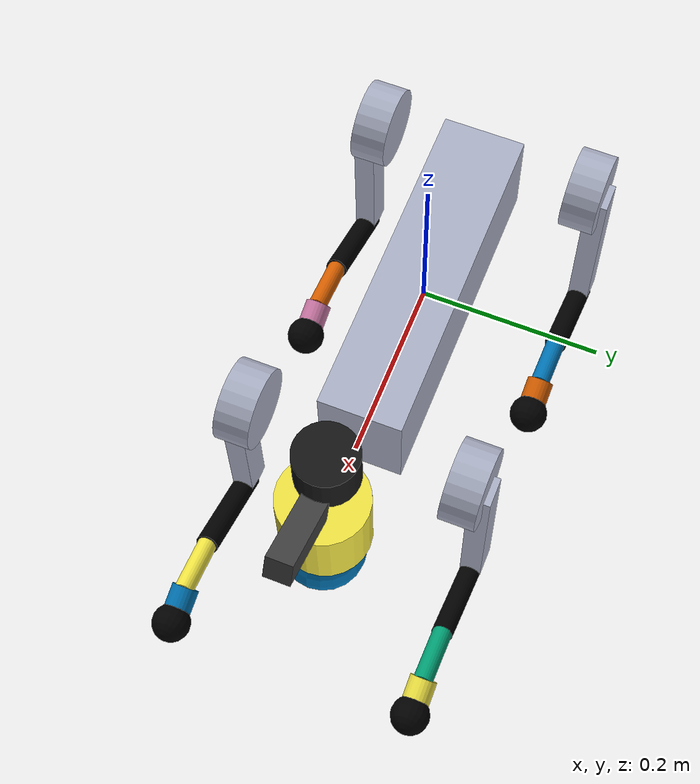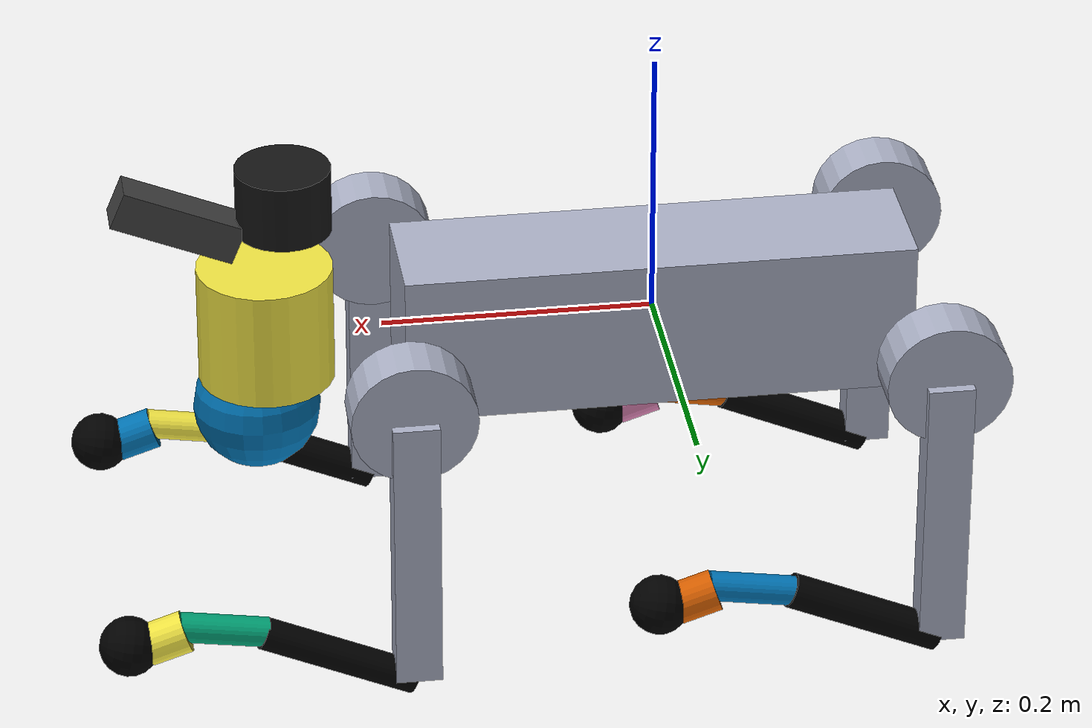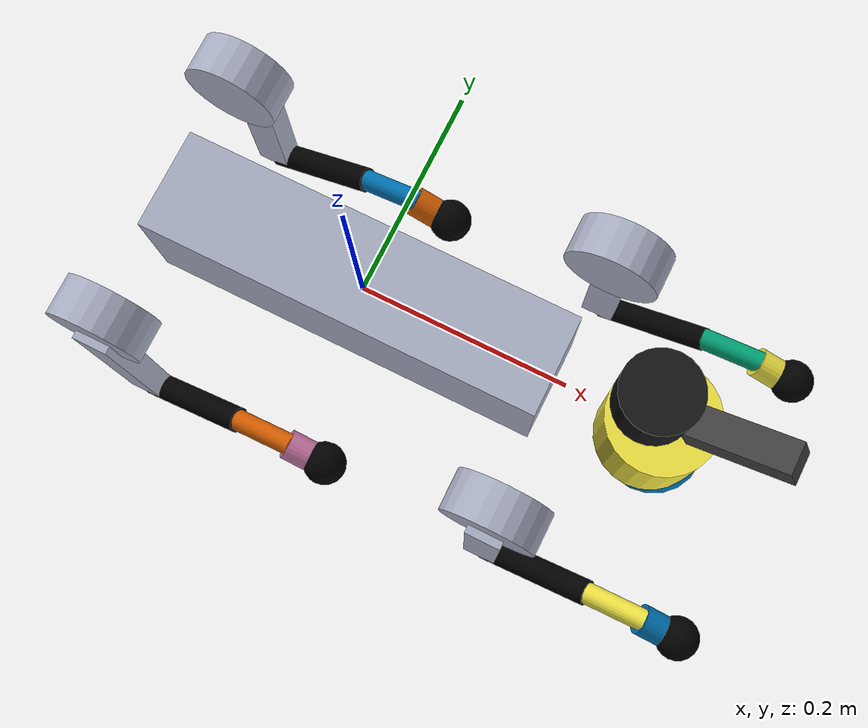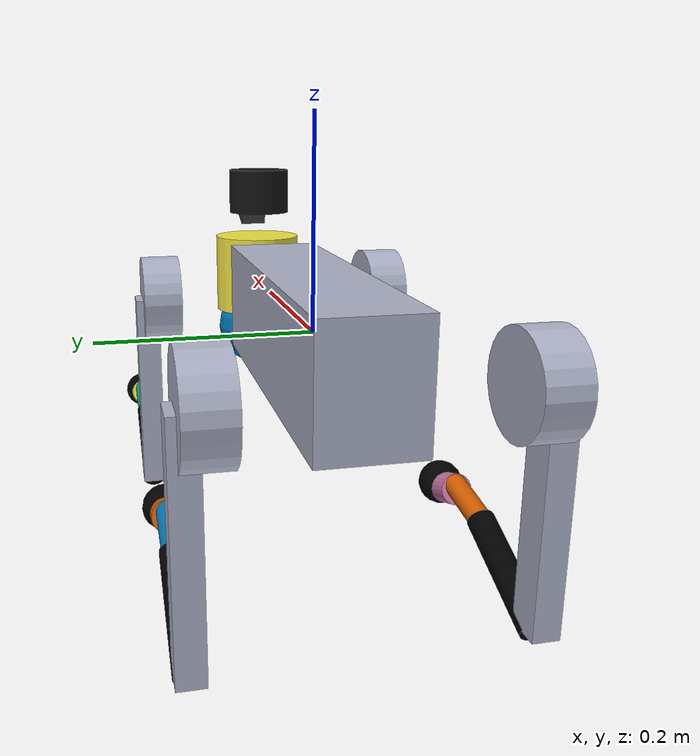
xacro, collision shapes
<?xml version="1.0"?>
<robot name="go2_description" xmlns:xacro="http://www.ros.org/wiki/xacro">
  <xacro:include filename="$(find go2_description)/urdf/go2_nav_frames.xacro"/>
  <xacro:include filename="$(find go2_description)/urdf/go2_official_body.xacro"/>
  <xacro:include filename="$(find go2_description)/urdf/go2_lidar.xacro"/>
  <xacro:include filename="$(find go2_description)/urdf/go2_d435i_mount.xacro"/>
  <xacro:include filename="$(find go2_description)/urdf/go2_realsense_d435i.xacro"/>
  <xacro:include filename="$(find go2_description)/urdf/go2_gazebo_d435i_sensor.xacro"/>
  <xacro:include filename="$(find go2_description)/urdf/go2_gazebo_planar_move.xacro"/>

  <xacro:arg name="enable_lidar" default="true"/>
  <xacro:arg name="enable_gazebo_lidar_plugin" default="false"/>
  <xacro:arg name="gazebo_scan_topic" default="/unilidar/laserscan"/>
  <xacro:arg name="gazebo_lidar_cloud_topic" default="/unilidar/cloud"/>
  <xacro:arg name="gazebo_lidar_update_rate" default="5.55"/>
  <xacro:arg name="gazebo_lidar_cloud_horizontal_samples" default="592"/>
  <xacro:arg name="gazebo_lidar_cloud_vertical_samples" default="39"/>
  <xacro:arg name="gazebo_lidar_scan_samples" default="592"/>
  <xacro:arg name="gazebo_lidar_sensor_type" default="gpu_ray"/>
  <xacro:arg name="gazebo_lidar_min_angle" default="-3.14159265359"/>
  <xacro:arg name="gazebo_lidar_max_angle" default="3.14159265359"/>
  <xacro:arg name="gazebo_lidar_vertical_min_angle" default="-0.83775804096"/>
  <xacro:arg name="gazebo_lidar_vertical_max_angle" default="0.83775804096"/>
  <xacro:arg name="gazebo_lidar_min_range" default="0.05"/>
  <xacro:arg name="gazebo_lidar_max_range" default="30.0"/>
  <xacro:arg name="enable_depth_camera" default="true"/>
  <xacro:arg name="enable_gazebo_depth_plugin" default="false"/>
  <xacro:arg name="enable_gazebo_planar_move" default="false"/>
  <xacro:arg name="freeze_gazebo_model" default="false"/>
  <xacro:arg name="gazebo_cmd_vel_topic" default="/cmd_vel"/>
  <xacro:arg name="d435i_pitch_deg" default="-22.5"/>
  <xacro:arg name="d435i_collision_padding_m" default="0.002"/>

  <xacro:go2_nav_frames/>
  <xacro:go2_official_body freeze_joints="$(arg freeze_gazebo_model)"/>

  <xacro:if value="$(arg enable_lidar)">
    <xacro:go2_lidar
      parent="base"
      enable_gazebo_plugin="$(arg enable_gazebo_lidar_plugin)"
      cloud_topic="$(arg gazebo_lidar_cloud_topic)"
      laserscan_topic="$(arg gazebo_scan_topic)"
      update_rate="$(arg gazebo_lidar_update_rate)"
      cloud_horizontal_samples="$(arg gazebo_lidar_cloud_horizontal_samples)"
      cloud_vertical_samples="$(arg gazebo_lidar_cloud_vertical_samples)"
      scan_samples="$(arg gazebo_lidar_scan_samples)"
      lidar_sensor_type="$(arg gazebo_lidar_sensor_type)"
      min_angle="$(arg gazebo_lidar_min_angle)"
      max_angle="$(arg gazebo_lidar_max_angle)"
      vertical_min_angle="$(arg gazebo_lidar_vertical_min_angle)"
      vertical_max_angle="$(arg gazebo_lidar_vertical_max_angle)"
      min_range="$(arg gazebo_lidar_min_range)"
      max_range="$(arg gazebo_lidar_max_range)"/>
  </xacro:if>

  <xacro:if value="$(arg enable_gazebo_planar_move)">
    <xacro:go2_gazebo_planar_move
      cmd_vel_topic="$(arg gazebo_cmd_vel_topic)"/>
  </xacro:if>

  <xacro:if value="$(arg enable_depth_camera)">
    <xacro:go2_d435i_mount
      parent="base"
      d435i_pitch_deg="$(arg d435i_pitch_deg)"
      d435i_collision_padding_m="$(arg d435i_collision_padding_m)"/>
    <xacro:go2_realsense_d435i
      parent="d435i_link"
      sensor_name="camera"/>
    <xacro:if value="$(arg enable_gazebo_depth_plugin)">
      <xacro:go2_gazebo_d435i_sensor sensor_name="camera"/>
    </xacro:if>
  </xacro:if>
</robot>

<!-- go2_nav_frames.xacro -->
<robot xmlns:xacro="http://www.ros.org/wiki/xacro">
  <xacro:macro name="go2_nav_frames" params="">
    <link name="base_footprint"/>
    <link name="base_link"/>

    <joint name="base_link_to_base_footprint_joint" type="fixed">
      <parent link="base_link"/>
      <child link="base_footprint"/>
      <origin xyz="0 0 0" rpy="0 0 0"/>
    </joint>

    <joint name="base_link_to_base_joint" type="fixed">
      <parent link="base_link"/>
      <child link="base"/>
      <origin xyz="0 0 0" rpy="0 0 0"/>
    </joint>
  </xacro:macro>
</robot>

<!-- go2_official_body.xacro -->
<robot xmlns:xacro="http://www.ros.org/wiki/xacro">
  <xacro:macro name="go2_official_body" params="freeze_joints:=false"><link name="base">
    <inertial>
      <origin xyz="0.021112 0 -0.005366" rpy="0 0 0" />
      <mass value="6.921" />
      <inertia ixx="0.02448" ixy="0.00012166" ixz="0.0014849" iyy="0.098077" iyz="-3.12E-05" izz="0.107" />
    </inertial>
    <visual>
      <origin xyz="0 0 0" rpy="0 0 0" />
      <geometry>
        <mesh filename="file://$(find go2_description)/dae/base.dae" />
      </geometry>
      <material name="深色橡胶_001-effect"><color rgba="0.6717055 0.6924257 0.7742702 1" /></material><material name="白色logo_001-effect"><color rgba="1 1 1 1" /></material><material name="黑色贴纸_007-effect"><color rgba="0.009018 0.009018 0.009018 1" /></material><material name="黑色金属_007-effect"><color rgba="0.01341 0.01341 0.01341 1" /></material><material name="黑色塑料_003-effect"><color rgba="0.023455 0.023455 0.023455 1" /></material></visual>
    <collision>
      <origin rpy="0 0 0" xyz="0 0 0" />
      <geometry>
        <box size="0.3762 0.0935 0.114" />
      </geometry>
    </collision>
  </link>
  <link name="Head_upper">
    <inertial>
      <origin xyz="0 0 0" rpy="0 0 0" />
      <mass value="0.001" />
      <inertia ixx="9.6e-06" ixy="0" ixz="0" iyy="9.6e-06" iyz="0" izz="9.6e-06" />
    </inertial>
    <collision>
      <origin xyz="0 0 0" rpy="0 0 0" />
      <geometry>
        <cylinder radius="0.05" length="0.09" />
      </geometry>
    </collision>
  </link>
  <joint name="Head_upper_joint" type="fixed" dont_collapse="true">
    <origin xyz="0.285 0 0.01" rpy="0 0 0" />
    <parent link="base" />
    <child link="Head_upper" />
    <axis xyz="0 0 0" />
  </joint>
  <link name="Head_lower">
    <inertial>
      <origin xyz="0 0 0" rpy="0 0 0" />
      <mass value="0.001" />
      <inertia ixx="9.6e-06" ixy="0" ixz="0" iyy="9.6e-06" iyz="0" izz="9.6e-06" />
    </inertial>
    <collision>
      <origin xyz="0 0 0" rpy="0 0 0" />
      <geometry>
        <sphere radius="0.047" />
      </geometry>
    </collision>
  </link>
  <joint name="Head_lower_joint" type="fixed" dont_collapse="true">
    <origin xyz="0.008 0 -0.07" rpy="0 0 0" />
    <parent link="Head_upper" />
    <child link="Head_lower" />
    <axis xyz="0 0 0" />
  </joint>
  <link name="FL_hip">
    <inertial>
      <origin xyz="-0.0054 0.00194 -0.000105" rpy="0 0 0" />
      <mass value="0.678" />
      <inertia ixx="0.00048" ixy="-3.01E-06" ixz="1.11E-06" iyy="0.000884" iyz="-1.42E-06" izz="0.000596" />
    </inertial>
    <visual>
      <origin xyz="0 0 0" rpy="0 0 0" />
      <geometry>
        <mesh filename="file://$(find go2_description)/dae/hip.dae" />
      </geometry>
      <material name="深色橡胶_001-effect"><color rgba="0.6717055 0.6924257 0.7742702 1" /></material><material name="Material-effect"><color rgba="0.9 0.95 0.95 1" /></material></visual>
    <collision>
      <origin rpy="1.5707963267948966 0 0" xyz="0 0.08 0" />
      <geometry>
        <cylinder length="0.04" radius="0.046" />
      </geometry>
    </collision>
  </link>
  <joint name="FL_hip_joint" type="${'fixed' if freeze_joints else 'revolute'}">
    <origin xyz="0.1934 0.0465 0" rpy="0 0 0" />
    <parent link="base" />
    <child link="FL_hip" />
    <axis xyz="1 0 0" />
    <limit lower="-1.0472" upper="1.0472" effort="23.7" velocity="30.1" />
  </joint>
  <link name="FL_hip_rotor">
    <inertial>
      <origin rpy="0 0 0" xyz="0.0 0.0 0.0" />
      <mass value="0.089" />
      <inertia ixx="0.000111842" ixy="0.0" ixz="0.0" iyy="0.000059647" iyz="0.0" izz="0.000059647" />
    </inertial>
  </link>
  <joint name="FL_hip_rotor_joint" type="fixed">
    <origin rpy="0 0 0" xyz="0.11215 0.04675 0" />
    <parent link="base" />
    <child link="FL_hip_rotor" />
  </joint>
  <link name="FL_thigh">
    <inertial>
      <origin xyz="-0.00374 -0.0223 -0.0327" rpy="0 0 0" />
      <mass value="1.152" />
      <inertia ixx="0.00584" ixy="8.72E-05" ixz="-0.000289" iyy="0.0058" iyz="0.000808" izz="0.00103" />
    </inertial>
    <visual>
      <origin xyz="0 0 0" rpy="0 0 0" />
      <geometry>
        <mesh filename="file://$(find go2_description)/dae/thigh.dae" />
      </geometry>
      <material name="深色橡胶_003-effect"><color rgba="0.6717055 0.6924257 0.7742702 1" /></material><material name="Material_009-effect"><color rgba="0.9 0.95 0.95 1" /></material></visual>
    <collision>
      <origin rpy="0 1.5707963267948966 0" xyz="0 0 -0.1065" />
      <geometry>
        <box size="0.213 0.0245 0.034" />
      </geometry>
    </collision>
  </link>
  <joint name="FL_thigh_joint" type="${'fixed' if freeze_joints else 'revolute'}">
    <origin xyz="0 0.0955 0" rpy="${'0 0.8 0' if freeze_joints else '0 0 0'}" />
    <parent link="FL_hip" />
    <child link="FL_thigh" />
    <axis xyz="0 1 0" />
    <limit lower="-1.5708" upper="3.4907" effort="23.7" velocity="30.1" />
  </joint>
  <link name="FL_thigh_rotor">
    <inertial>
      <origin rpy="0 0 0" xyz="0.0 0.0 0.0" />
      <mass value="0.089" />
      <inertia ixx="0.000059647" ixy="0.0" ixz="0.0" iyy="0.000111842" iyz="0.0" izz="0.000059647" />
    </inertial>
  </link>
  <joint name="FL_thigh_rotor_joint" type="fixed">
    <origin rpy="0 0 0" xyz="0 -0.00015 0" />
    <parent link="FL_hip" />
    <child link="FL_thigh_rotor" />
  </joint>
  <link name="FL_calf">
    <inertial>
      <origin xyz="0.00548 -0.000975 -0.115" rpy="0 0 0" />
      <mass value="0.154" />
      <inertia ixx="0.00108" ixy="3.4E-07" ixz="1.72E-05" iyy="0.0011" iyz="8.28E-06" izz="3.29E-05" />
    </inertial>
    <visual>
      <origin xyz="0 0 0" rpy="0 0 0" />
      <geometry>
        <mesh filename="file://$(find go2_description)/dae/calf.dae" />
      </geometry>
      <material name="黑色足端_005-effect"><color rgba="0 0 0 1" /></material><material name="深色橡胶_005-effect"><color rgba="0.6717055 0.6924257 0.7742702 1" /></material></visual>
    <collision>
      <origin rpy="0 -0.21 0" xyz="0.008 0 -0.06" />
      <geometry>
        <cylinder length="0.12" radius="0.012" />
      </geometry>
    </collision>
  </link>
  <joint name="FL_calf_joint" type="${'fixed' if freeze_joints else 'revolute'}">
    <origin xyz="0 0 -0.213" rpy="${'0 -1.6 0' if freeze_joints else '0 0 0'}" />
    <parent link="FL_thigh" />
    <child link="FL_calf" />
    <axis xyz="0 1 0" />
    <limit lower="-2.7227" upper="-0.83776" effort="45.43" velocity="15.70" />
  </joint>
  <link name="FL_calflower">
    <collision>
      <origin rpy="0 0 0" xyz="0 0 0" />
      <geometry>
        <cylinder length="0.065" radius="0.011" />
      </geometry>
    </collision>
  </link>
  <joint name="FL_calflower_joint" type="fixed">
    <origin xyz="0.020 0 -0.148" rpy="0 0.05 0" />
    <parent link="FL_calf" />
    <child link="FL_calflower" />
    <axis xyz="0 0 0" />
  </joint>
  <link name="FL_calflower1">
    <collision>
      <origin rpy="0 0 0" xyz="0 0 0" />
      <geometry>
        <cylinder length="0.03" radius="0.0155" />
      </geometry>
    </collision>
  </link>
  <joint name="FL_calflower1_joint" type="fixed">
    <origin xyz="-0.01 0 -0.04" rpy="0 0.48 0" />
    <parent link="FL_calflower" />
    <child link="FL_calflower1" />
    <axis xyz="0 0 0" />
  </joint>
  <link name="FL_calf_rotor">
    <inertial>
      <origin rpy="0 0 0" xyz="0.0 0.0 0.0" />
      <mass value="0.089" />
      <inertia ixx="0.000059647" ixy="0.0" ixz="0.0" iyy="0.000111842" iyz="0.0" izz="0.000059647" />
    </inertial>
  </link>
  <joint name="FL_calf_rotor_joint" type="fixed">
    <origin rpy="0 0 0" xyz="0 -0.03235 0" />
    <parent link="FL_thigh" />
    <child link="FL_calf_rotor" />
  </joint>
  <link name="FL_foot">
    <inertial>
      <origin xyz="0 0 0" rpy="0 0 0" />
      <mass value="0.04" />
      <inertia ixx="9.6e-06" ixy="0" ixz="0" iyy="9.6e-06" iyz="0" izz="9.6e-06" />
    </inertial>
    <visual>
      <origin xyz="0 0 0" rpy="0 0 0" />
      <geometry>
        <mesh filename="file://$(find go2_description)/dae/foot.dae" />
      </geometry>
      <material name="黑色足端_007-effect"><color rgba="0 0 0 1" /></material></visual>
    <collision>
      <origin rpy="0 0 0" xyz="-0.002 0 0" />
      <geometry>
        <sphere radius="0.022" />
      </geometry>
    </collision>
  </link>
  <joint name="FL_foot_joint" type="fixed" dont_collapse="true">
    <origin xyz="0 0 -0.213" rpy="0 0 0" />
    <parent link="FL_calf" />
    <child link="FL_foot" />
    <axis xyz="0 0 0" />
  </joint>
  <link name="FR_hip">
    <inertial>
      <origin xyz="-0.0054 -0.00194 -0.000105" rpy="0 0 0" />
      <mass value="0.678" />
      <inertia ixx="0.00048" ixy="3.01E-06" ixz="1.11E-06" iyy="0.000884" iyz="1.42E-06" izz="0.000596" />
    </inertial>
    <visual>
      <origin xyz="0 0 0" rpy="3.1415 0 0" />
      <geometry>
        <mesh filename="file://$(find go2_description)/dae/hip.dae" />
      </geometry>
      <material name="深色橡胶_001-effect"><color rgba="0.6717055 0.6924257 0.7742702 1" /></material><material name="Material-effect"><color rgba="0.9 0.95 0.95 1" /></material></visual>
    <collision>
      <origin rpy="1.5707963267948966 0 0" xyz="0 -0.08 0" />
      <geometry>
        <cylinder length="0.04" radius="0.046" />
      </geometry>
    </collision>
  </link>
  <joint name="FR_hip_joint" type="${'fixed' if freeze_joints else 'revolute'}">
    <origin xyz="0.1934 -0.0465 0" rpy="0 0 0" />
    <parent link="base" />
    <child link="FR_hip" />
    <axis xyz="1 0 0" />
    <limit lower="-1.0472" upper="1.0472" effort="23.7" velocity="30.1" />
  </joint>
  <link name="FR_hip_rotor">
    <inertial>
      <origin rpy="0 0 0" xyz="0.0 0.0 0.0" />
      <mass value="0.089" />
      <inertia ixx="0.000111842" ixy="0.0" ixz="0.0" iyy="0.000059647" iyz="0.0" izz="0.000059647" />
    </inertial>
  </link>
  <joint name="FR_hip_rotor_joint" type="fixed">
    <origin rpy="0 0 0" xyz="0.11215 -0.04675 0" />
    <parent link="base" />
    <child link="FR_hip_rotor" />
  </joint>
  <link name="FR_thigh">
    <inertial>
      <origin xyz="-0.00374 0.0223 -0.0327" rpy="0 0 0" />
      <mass value="1.152" />
      <inertia ixx="0.00584" ixy="-8.72E-05" ixz="-0.000289" iyy="0.0058" iyz="-0.000808" izz="0.00103" />
    </inertial>
    <visual>
      <origin xyz="0 0 0" rpy="0 0 0" />
      <geometry>
        <mesh filename="file://$(find go2_description)/dae/thigh_mirror.dae" />
      </geometry>
      <material name="深色橡胶_012-effect"><color rgba="0.6717055 0.6924257 0.7742702 1" /></material><material name="Material_011-effect"><color rgba="0.9 0.95 0.95 1" /></material></visual>
    <collision>
      <origin rpy="0 1.5707963267948966 0" xyz="0 0 -0.1065" />
      <geometry>
        <box size="0.213 0.0245 0.034" />
      </geometry>
    </collision>
  </link>
  <joint name="FR_thigh_joint" type="${'fixed' if freeze_joints else 'revolute'}">
    <origin xyz="0 -0.0955 0" rpy="${'0 0.8 0' if freeze_joints else '0 0 0'}" />
    <parent link="FR_hip" />
    <child link="FR_thigh" />
    <axis xyz="0 1 0" />
    <limit lower="-1.5708" upper="3.4907" effort="23.7" velocity="30.1" />
  </joint>
  <link name="FR_thigh_rotor">
    <inertial>
      <origin rpy="0 0 0" xyz="0.0 0.0 0.0" />
      <mass value="0.089" />
      <inertia ixx="0.000059647" ixy="0.0" ixz="0.0" iyy="0.000111842" iyz="0.0" izz="0.000059647" />
    </inertial>
  </link>
  <joint name="FR_thigh_rotor_joint" type="fixed">
    <origin rpy="0 0 0" xyz="0 0.00015 0" />
    <parent link="FR_hip" />
    <child link="FR_thigh_rotor" />
  </joint>
  <link name="FR_calf">
    <inertial>
      <origin xyz="0.00548 0.000975 -0.115" rpy="0 0 0" />
      <mass value="0.154" />
      <inertia ixx="0.00108" ixy="-3.4E-07" ixz="1.72E-05" iyy="0.0011" iyz="-8.28E-06" izz="3.29E-05" />
    </inertial>
    <visual>
      <origin xyz="0 0 0" rpy="0 0 0" />
      <geometry>
        <mesh filename="file://$(find go2_description)/dae/calf_mirror.dae" />
      </geometry>
      <material name="黑色足端_006-effect"><color rgba="0 0 0 1" /></material><material name="深色橡胶_007-effect"><color rgba="0.6717055 0.6924257 0.7742702 1" /></material></visual>
    <collision>
      <origin rpy="0 -0.2 0" xyz="0.01 0 -0.06" />
      <geometry>
        <cylinder length="0.12" radius="0.013" />
      </geometry>
    </collision>
  </link>
  <joint name="FR_calf_joint" type="${'fixed' if freeze_joints else 'revolute'}">
    <origin xyz="0 0 -0.213" rpy="${'0 -1.6 0' if freeze_joints else '0 0 0'}" />
    <parent link="FR_thigh" />
    <child link="FR_calf" />
    <axis xyz="0 1 0" />
    <limit lower="-2.7227" upper="-0.83776" effort="45.43" velocity="15.70" />
  </joint>
  <link name="FR_calflower">
    <collision>
      <origin rpy="0 0 0" xyz="0 0 0" />
      <geometry>
        <cylinder length="0.065" radius="0.011" />
      </geometry>
    </collision>
  </link>
  <joint name="FR_calflower_joint" type="fixed">
    <origin xyz="0.020 0 -0.148" rpy="0 0.05 0" />
    <parent link="FR_calf" />
    <child link="FR_calflower" />
    <axis xyz="0 0 0" />
  </joint>
  <link name="FR_calflower1">
    <collision>
      <origin rpy="0 0 0" xyz="0 0 0" />
      <geometry>
        <cylinder length="0.03" radius="0.0155" />
      </geometry>
    </collision>
  </link>
  <joint name="FR_calflower1_joint" type="fixed">
    <origin xyz="-0.01 0 -0.04" rpy="0 0.48 0" />
    <parent link="FR_calflower" />
    <child link="FR_calflower1" />
    <axis xyz="0 0 0" />
  </joint>
  <link name="FR_calf_rotor">
    <inertial>
      <origin rpy="0 0 0" xyz="0.0 0.0 0.0" />
      <mass value="0.089" />
      <inertia ixx="0.000059647" ixy="0.0" ixz="0.0" iyy="0.000111842" iyz="0.0" izz="0.000059647" />
    </inertial>
  </link>
  <joint name="FR_calf_rotor_joint" type="fixed">
    <origin rpy="0 0 0" xyz="0 0.03235 0" />
    <parent link="FR_thigh" />
    <child link="FR_calf_rotor" />
  </joint>
  <link name="FR_foot">
    <inertial>
      <origin xyz="0 0 0" rpy="0 0 0" />
      <mass value="0.04" />
      <inertia ixx="9.6e-06" ixy="0" ixz="0" iyy="9.6e-06" iyz="0" izz="9.6e-06" />
    </inertial>
    <visual>
      <origin xyz="0 0 0" rpy="0 0 0" />
      <geometry>
        <mesh filename="file://$(find go2_description)/dae/foot.dae" />
      </geometry>
      <material name="黑色足端_007-effect"><color rgba="0 0 0 1" /></material></visual>
    <collision>
      <origin rpy="0 0 0" xyz="-0.002 0 0" />
      <geometry>
        <sphere radius="0.022" />
      </geometry>
    </collision>
  </link>
  <joint name="FR_foot_joint" type="fixed" dont_collapse="true">
    <origin xyz="0 0 -0.213" rpy="0 0 0" />
    <parent link="FR_calf" />
    <child link="FR_foot" />
    <axis xyz="0 0 0" />
  </joint>
  <link name="RL_hip">
    <inertial>
      <origin xyz="0.0054 0.00194 -0.000105" rpy="0 0 0" />
      <mass value="0.678" />
      <inertia ixx="0.00048" ixy="3.01E-06" ixz="-1.11E-06" iyy="0.000884" iyz="-1.42E-06" izz="0.000596" />
    </inertial>
    <visual>
      <origin xyz="0 0 0" rpy="0 3.1415 0" />
      <geometry>
        <mesh filename="file://$(find go2_description)/dae/hip.dae" />
      </geometry>
      <material name="深色橡胶_001-effect"><color rgba="0.6717055 0.6924257 0.7742702 1" /></material><material name="Material-effect"><color rgba="0.9 0.95 0.95 1" /></material></visual>
    <collision>
      <origin rpy="1.5707963267948966 0 0" xyz="0 0.08 0" />
      <geometry>
        <cylinder length="0.04" radius="0.046" />
      </geometry>
    </collision>
  </link>
  <joint name="RL_hip_joint" type="${'fixed' if freeze_joints else 'revolute'}">
    <origin xyz="-0.1934 0.0465 0" rpy="0 0 0" />
    <parent link="base" />
    <child link="RL_hip" />
    <axis xyz="1 0 0" />
    <limit lower="-1.0472" upper="1.0472" effort="23.7" velocity="30.1" />
  </joint>
  <link name="RL_hip_rotor">
    <inertial>
      <origin rpy="0 0 0" xyz="0.0 0.0 0.0" />
      <mass value="0.089" />
      <inertia ixx="0.000111842" ixy="0.0" ixz="0.0" iyy="0.000059647" iyz="0.0" izz="0.000059647" />
    </inertial>
  </link>
  <joint name="RL_hip_rotor_joint" type="fixed">
    <origin rpy="0 0 0" xyz="-0.11215 0.04675 0" />
    <parent link="base" />
    <child link="RL_hip_rotor" />
  </joint>
  <link name="RL_thigh">
    <inertial>
      <origin xyz="-0.00374 -0.0223 -0.0327" rpy="0 0 0" />
      <mass value="1.152" />
      <inertia ixx="0.00584" ixy="8.72E-05" ixz="-0.000289" iyy="0.0058" iyz="0.000808" izz="0.00103" />
    </inertial>
    <visual>
      <origin xyz="0 0 0" rpy="0 0 0" />
      <geometry>
        <mesh filename="file://$(find go2_description)/dae/thigh.dae" />
      </geometry>
      <material name="深色橡胶_003-effect"><color rgba="0.6717055 0.6924257 0.7742702 1" /></material><material name="Material_009-effect"><color rgba="0.9 0.95 0.95 1" /></material></visual>
    <collision>
      <origin rpy="0 1.5707963267948966 0" xyz="0 0 -0.1065" />
      <geometry>
        <box size="0.213 0.0245 0.034" />
      </geometry>
    </collision>
  </link>
  <joint name="RL_thigh_joint" type="${'fixed' if freeze_joints else 'revolute'}">
    <origin xyz="0 0.0955 0" rpy="${'0 0.8 0' if freeze_joints else '0 0 0'}" />
    <parent link="RL_hip" />
    <child link="RL_thigh" />
    <axis xyz="0 1 0" />
    <limit lower="-0.5236" upper="4.5379" effort="23.7" velocity="30.1" />
  </joint>
  <link name="RL_thigh_rotor">
    <inertial>
      <origin rpy="0 0 0" xyz="0.0 0.0 0.0" />
      <mass value="0.089" />
      <inertia ixx="0.000059647" ixy="0.0" ixz="0.0" iyy="0.000111842" iyz="0.0" izz="0.000059647" />
    </inertial>
  </link>
  <joint name="RL_thigh_rotor_joint" type="fixed">
    <origin rpy="0 0 0" xyz="0 -0.00015 0" />
    <parent link="RL_hip" />
    <child link="RL_thigh_rotor" />
  </joint>
  <link name="RL_calf">
    <inertial>
      <origin xyz="0.00548 -0.000975 -0.115" rpy="0 0 0" />
      <mass value="0.154" />
      <inertia ixx="0.00108" ixy="3.4E-07" ixz="1.72E-05" iyy="0.0011" iyz="8.28E-06" izz="3.29E-05" />
    </inertial>
    <visual>
      <origin xyz="0 0 0" rpy="0 0 0" />
      <geometry>
        <mesh filename="file://$(find go2_description)/dae/calf.dae" />
      </geometry>
      <material name="黑色足端_005-effect"><color rgba="0 0 0 1" /></material><material name="深色橡胶_005-effect"><color rgba="0.6717055 0.6924257 0.7742702 1" /></material></visual>
    <collision>
      <origin rpy="0 -0.2 0" xyz="0.01 0 -0.06" />
      <geometry>
        <cylinder length="0.12" radius="0.013" />
      </geometry>
    </collision>
  </link>
  <joint name="RL_calf_joint" type="${'fixed' if freeze_joints else 'revolute'}">
    <origin xyz="0 0 -0.213" rpy="${'0 -1.6 0' if freeze_joints else '0 0 0'}" />
    <parent link="RL_thigh" />
    <child link="RL_calf" />
    <axis xyz="0 1 0" />
    <limit lower="-2.7227" upper="-0.83776" effort="45.43" velocity="15.70" />
  </joint>
  <link name="RL_calflower">
    <collision>
      <origin rpy="0 0 0" xyz="0 0 0" />
      <geometry>
        <cylinder length="0.065" radius="0.011" />
      </geometry>
    </collision>
  </link>
  <joint name="RL_calflower_joint" type="fixed">
    <origin xyz="0.020 0 -0.148" rpy="0 0.05 0" />
    <parent link="RL_calf" />
    <child link="RL_calflower" />
    <axis xyz="0 0 0" />
  </joint>
  <link name="RL_calflower1">
    <collision>
      <origin rpy="0 0 0" xyz="0 0 0" />
      <geometry>
        <cylinder length="0.03" radius="0.0155" />
      </geometry>
    </collision>
  </link>
  <joint name="RL_calflower1_joint" type="fixed">
    <origin xyz="-0.01 0 -0.04" rpy="0 0.48 0" />
    <parent link="RL_calflower" />
    <child link="RL_calflower1" />
    <axis xyz="0 0 0" />
  </joint>
  <link name="RL_calf_rotor">
    <inertial>
      <origin rpy="0 0 0" xyz="0.0 0.0 0.0" />
      <mass value="0.089" />
      <inertia ixx="0.000059647" ixy="0.0" ixz="0.0" iyy="0.000111842" iyz="0.0" izz="0.000059647" />
    </inertial>
  </link>
  <joint name="RL_calf_rotor_joint" type="fixed">
    <origin rpy="0 0 0" xyz="0 -0.03235 0" />
    <parent link="RL_thigh" />
    <child link="RL_calf_rotor" />
  </joint>
  <link name="RL_foot">
    <inertial>
      <origin xyz="0 0 0" rpy="0 0 0" />
      <mass value="0.04" />
      <inertia ixx="9.6e-06" ixy="0" ixz="0" iyy="9.6e-06" iyz="0" izz="9.6e-06" />
    </inertial>
    <visual>
      <origin xyz="0 0 0" rpy="0 0 0" />
      <geometry>
        <mesh filename="file://$(find go2_description)/dae/foot.dae" />
      </geometry>
      <material name="黑色足端_007-effect"><color rgba="0 0 0 1" /></material></visual>
    <collision>
      <origin rpy="0 0 0" xyz="-0.002 0 0" />
      <geometry>
        <sphere radius="0.022" />
      </geometry>
    </collision>
  </link>
  <joint name="RL_foot_joint" type="fixed" dont_collapse="true">
    <origin xyz="0 0 -0.213" rpy="0 0 0" />
    <parent link="RL_calf" />
    <child link="RL_foot" />
    <axis xyz="0 0 0" />
  </joint>
  <link name="RR_hip">
    <inertial>
      <origin xyz="0.0054 -0.00194 -0.000105" rpy="0 0 0" />
      <mass value="0.678" />
      <inertia ixx="0.00048" ixy="-3.01E-06" ixz="-1.11E-06" iyy="0.000884" iyz="1.42E-06" izz="0.000596" />
    </inertial>
    <visual>
      <origin xyz="0 0 0" rpy="3.1415 3.1415 0" />
      <geometry>
        <mesh filename="file://$(find go2_description)/dae/hip.dae" />
      </geometry>
      <material name="深色橡胶_001-effect"><color rgba="0.6717055 0.6924257 0.7742702 1" /></material><material name="Material-effect"><color rgba="0.9 0.95 0.95 1" /></material></visual>
    <collision>
      <origin rpy="1.5707963267948966 0 0" xyz="0 -0.08 0" />
      <geometry>
        <cylinder length="0.04" radius="0.046" />
      </geometry>
    </collision>
  </link>
  <joint name="RR_hip_joint" type="${'fixed' if freeze_joints else 'revolute'}">
    <origin xyz="-0.1934 -0.0465 0" rpy="0 0 0" />
    <parent link="base" />
    <child link="RR_hip" />
    <axis xyz="1 0 0" />
    <limit lower="-1.0472" upper="1.0472" effort="23.7" velocity="30.1" />
  </joint>
  <link name="RR_hip_rotor">
    <inertial>
      <origin rpy="0 0 0" xyz="0.0 0.0 0.0" />
      <mass value="0.089" />
      <inertia ixx="0.000111842" ixy="0.0" ixz="0.0" iyy="0.000059647" iyz="0.0" izz="0.000059647" />
    </inertial>
  </link>
  <joint name="RR_hip_rotor_joint" type="fixed">
    <origin rpy="0 0 0" xyz="-0.11215 -0.04675 0" />
    <parent link="base" />
    <child link="RR_hip_rotor" />
  </joint>
  <link name="RR_thigh">
    <inertial>
      <origin xyz="-0.00374 0.0223 -0.0327" rpy="0 0 0" />
      <mass value="1.152" />
      <inertia ixx="0.00584" ixy="-8.72E-05" ixz="-0.000289" iyy="0.0058" iyz="-0.000808" izz="0.00103" />
    </inertial>
    <visual>
      <origin xyz="0 0 0" rpy="0 0 0" />
      <geometry>
        <mesh filename="file://$(find go2_description)/dae/thigh_mirror.dae" />
      </geometry>
      <material name="深色橡胶_012-effect"><color rgba="0.6717055 0.6924257 0.7742702 1" /></material><material name="Material_011-effect"><color rgba="0.9 0.95 0.95 1" /></material></visual>
    <collision>
      <origin rpy="0 1.5707963267948966 0" xyz="0 0 -0.1065" />
      <geometry>
        <box size="0.213 0.0245 0.034" />
      </geometry>
    </collision>
  </link>
  <joint name="RR_thigh_joint" type="${'fixed' if freeze_joints else 'revolute'}">
    <origin xyz="0 -0.0955 0" rpy="${'0 0.8 0' if freeze_joints else '0 0 0'}" />
    <parent link="RR_hip" />
    <child link="RR_thigh" />
    <axis xyz="0 1 0" />
    <limit lower="-0.5236" upper="4.5379" effort="23.7" velocity="30.1" />
  </joint>
  <link name="RR_thigh_rotor">
    <inertial>
      <origin rpy="0 0 0" xyz="0.0 0.0 0.0" />
      <mass value="0.089" />
      <inertia ixx="0.000059647" ixy="0.0" ixz="0.0" iyy="0.000111842" iyz="0.0" izz="0.000059647" />
    </inertial>
  </link>
  <joint name="RR_thigh_rotor_joint" type="fixed">
    <origin rpy="0 0 0" xyz="0 0.00015 0" />
    <parent link="RR_hip" />
    <child link="RR_thigh_rotor" />
  </joint>
  <link name="RR_calf">
    <inertial>
      <origin xyz="0.00548 0.000975 -0.115" rpy="0 0 0" />
      <mass value="0.154" />
      <inertia ixx="0.00108" ixy="-3.4E-07" ixz="1.72E-05" iyy="0.0011" iyz="-8.28E-06" izz="3.29E-05" />
    </inertial>
    <visual>
      <origin xyz="0 0 0" rpy="0 0 0" />
      <geometry>
        <mesh filename="file://$(find go2_description)/dae/calf_mirror.dae" />
      </geometry>
      <material name="黑色足端_006-effect"><color rgba="0 0 0 1" /></material><material name="深色橡胶_007-effect"><color rgba="0.6717055 0.6924257 0.7742702 1" /></material></visual>
    <collision>
      <origin rpy="0 -0.2 0" xyz="0.01 0 -0.06" />
      <geometry>
        <cylinder length="0.12" radius="0.013" />
      </geometry>
    </collision>
  </link>
  <joint name="RR_calf_joint" type="${'fixed' if freeze_joints else 'revolute'}">
    <origin xyz="0 0 -0.213" rpy="${'0 -1.6 0' if freeze_joints else '0 0 0'}" />
    <parent link="RR_thigh" />
    <child link="RR_calf" />
    <axis xyz="0 1 0" />
    <limit lower="-2.7227" upper="-0.83776" effort="45.43" velocity="15.70" />
  </joint>
  <link name="RR_calflower">
    <collision>
      <origin rpy="0 0 0" xyz="0 0 0" />
      <geometry>
        <cylinder length="0.065" radius="0.011" />
      </geometry>
    </collision>
  </link>
  <joint name="RR_calflower_joint" type="fixed">
    <origin xyz="0.020 0 -0.148" rpy="0 0.05 0" />
    <parent link="RR_calf" />
    <child link="RR_calflower" />
    <axis xyz="0 0 0" />
  </joint>
  <link name="RR_calflower1">
    <collision>
      <origin rpy="0 0 0" xyz="0 0 0" />
      <geometry>
        <cylinder length="0.03" radius="0.0155" />
      </geometry>
    </collision>
  </link>
  <joint name="RR_calflower1_joint" type="fixed">
    <origin xyz="-0.01 0 -0.04" rpy="0 0.48 0" />
    <parent link="RR_calflower" />
    <child link="RR_calflower1" />
    <axis xyz="0 0 0" />
  </joint>
  <link name="RR_calf_rotor">
    <inertial>
      <origin rpy="0 0 0" xyz="0.0 0.0 0.0" />
      <mass value="0.089" />
      <inertia ixx="0.000059647" ixy="0.0" ixz="0.0" iyy="0.000111842" iyz="0.0" izz="0.000059647" />
    </inertial>
  </link>
  <joint name="RR_calf_rotor_joint" type="fixed">
    <origin rpy="0 0 0" xyz="0 0.03235 0" />
    <parent link="RR_thigh" />
    <child link="RR_calf_rotor" />
  </joint>
  <link name="RR_foot">
    <inertial>
      <origin xyz="0 0 0" rpy="0 0 0" />
      <mass value="0.04" />
      <inertia ixx="9.6e-06" ixy="0" ixz="0" iyy="9.6e-06" iyz="0" izz="9.6e-06" />
    </inertial>
    <visual>
      <origin xyz="0 0 0" rpy="0 0 0" />
      <geometry>
        <mesh filename="file://$(find go2_description)/dae/foot.dae" />
      </geometry>
      <material name="黑色足端_007-effect"><color rgba="0 0 0 1" /></material></visual>
    <collision>
      <origin rpy="0 0 0" xyz="-0.002 0 0" />
      <geometry>
        <sphere radius="0.022" />
      </geometry>
    </collision>
  </link>
  <joint name="RR_foot_joint" type="fixed" dont_collapse="true">
    <origin xyz="0 0 -0.213" rpy="0 0 0" />
    <parent link="RR_calf" />
    <child link="RR_foot" />
    <axis xyz="0 0 0" />
  </joint>
  <link name="imu">
    <inertial>
      <origin xyz="0 0 0" rpy="0 0 0" />
      <mass value="0" />
      <inertia ixx="0" ixy="0" ixz="0" iyy="0" iyz="0" izz="0" />
    </inertial>
  </link>
  <joint name="imu_joint" type="fixed">
    <origin xyz="-0.02557 0 0.04232" rpy="0 0 0" />
    <parent link="base" />
    <child link="imu" />
    <axis xyz="0 0 0" />
  </joint>
  <link name="radar">
    <inertial>
      <origin xyz="0 0 0" rpy="0 0 0" />
      <mass value="0" />
      <inertia ixx="0" ixy="0" ixz="0" iyy="0" iyz="0" izz="0" />
    </inertial>
  </link>
  <joint name="radar_joint" type="fixed">
    <origin xyz="0.28945 0 -0.046825" rpy="0 2.8782 0" />
    <parent link="base" />
    <child link="radar" />
    <axis xyz="0 0 0" />
  </joint>
  <joint name="front_camera_joint" type="fixed">
    <origin rpy="0 0 0" xyz="0.32715 -0.00003 0.04297" />
      <parent link="base" />
      <child link="front_camera" />
  </joint>
  <link name="front_camera">
  </link>  </xacro:macro>
</robot>

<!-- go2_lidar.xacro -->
<robot xmlns:xacro="http://www.ros.org/wiki/xacro">
  <xacro:macro
    name="go2_lidar"
    params="
      parent:=base
      enable_gazebo_plugin:=false
      cloud_topic:=/unilidar/cloud
      laserscan_topic:=/unilidar/laserscan
      update_rate:=5.55
      cloud_horizontal_samples:=592
      cloud_vertical_samples:=39
      scan_samples:=592
      lidar_sensor_type:=gpu_ray
      min_angle:=-3.14159265359
      max_angle:=3.14159265359
      vertical_min_angle:=-0.83775804096
      vertical_max_angle:=0.83775804096
      min_range:=0.05
      max_range:=30.0">
    <link name="lidar_link">
      <visual>
        <origin xyz="0 0 0" rpy="0 0 0"/>
        <geometry>
          <cylinder radius="0.035" length="0.05"/>
        </geometry>
        <material name="lidar_black">
          <color rgba="0.08 0.08 0.08 1.0"/>
        </material>
      </visual>
      <collision>
        <origin xyz="0 0 0" rpy="0 0 0"/>
        <geometry>
          <cylinder radius="0.035" length="0.05"/>
        </geometry>
      </collision>
    </link>

    <joint name="lidar_joint" type="fixed">
      <parent link="${parent}"/>
      <child link="lidar_link"/>
      <origin xyz="0.27 0.0 0.11" rpy="0 0 0"/>
    </joint>

    <link name="lidar_optical_frame"/>
    <joint name="lidar_optical_joint" type="fixed">
      <parent link="lidar_link"/>
      <child link="lidar_optical_frame"/>
      <origin xyz="0 0 0" rpy="-1.57079632679 0 -1.57079632679"/>
    </joint>

    <!-- Unitree L2-compatible frame aliases -->
    <link name="unilidar_lidar"/>
    <joint name="unilidar_lidar_joint" type="fixed">
      <parent link="lidar_link"/>
      <child link="unilidar_lidar"/>
      <origin xyz="0 0 0" rpy="0 0 0"/>
    </joint>

    <link name="unilidar_imu"/>
    <joint name="unilidar_imu_joint" type="fixed">
      <parent link="unilidar_lidar"/>
      <child link="unilidar_imu"/>
      <!-- From Unitree SDK docs: T_LI translation -->
      <origin xyz="-0.007698 -0.014655 0.00667" rpy="0 0 0"/>
    </joint>

    <xacro:if value="${enable_gazebo_plugin}">
      <gazebo reference="unilidar_lidar">
        <!-- 3D-priority tuning from L2 manual:
             update_rate=5.55Hz, vertical_scan=216Hz => vertical_samples=39
             sample_rate=128000pts/s => horizontal_samples=592 -->
        <sensor name="lidar_cloud_sensor" type="${lidar_sensor_type}">
          <always_on>true</always_on>
          <visualize>false</visualize>
          <update_rate>${update_rate}</update_rate>
          <ray>
            <scan>
              <horizontal>
                <samples>${cloud_horizontal_samples}</samples>
                <resolution>1.0</resolution>
                <min_angle>${min_angle}</min_angle>
                <max_angle>${max_angle}</max_angle>
              </horizontal>
              <vertical>
                <samples>${cloud_vertical_samples}</samples>
                <resolution>1.0</resolution>
                <min_angle>${vertical_min_angle}</min_angle>
                <max_angle>${vertical_max_angle}</max_angle>
              </vertical>
            </scan>
            <range>
              <min>${min_range}</min>
              <max>${max_range}</max>
              <resolution>0.0045</resolution>
            </range>
            <noise>
              <type>gaussian</type>
              <mean>0.0</mean>
              <stddev>0.01</stddev>
            </noise>
          </ray>
          <plugin name="go2_lidar_ros_cloud_plugin" filename="libgazebo_ros_ray_sensor.so">
            <ros>
              <namespace>/</namespace>
              <remapping>~/out:=${cloud_topic}</remapping>
            </ros>
            <frame_name>unilidar_lidar</frame_name>
            <output_type>sensor_msgs/PointCloud2</output_type>
          </plugin>
        </sensor>

        <!-- 2D scan is kept for compatibility; sample count follows 3D horizontal samples -->
        <sensor name="lidar_scan_sensor" type="${lidar_sensor_type}">
          <always_on>true</always_on>
          <visualize>false</visualize>
          <update_rate>${update_rate}</update_rate>
          <ray>
            <scan>
              <horizontal>
                <samples>${scan_samples}</samples>
                <resolution>1.0</resolution>
                <min_angle>${min_angle}</min_angle>
                <max_angle>${max_angle}</max_angle>
              </horizontal>
            </scan>
            <range>
              <min>${min_range}</min>
              <max>${max_range}</max>
              <resolution>0.0045</resolution>
            </range>
            <noise>
              <type>gaussian</type>
              <mean>0.0</mean>
              <stddev>0.01</stddev>
            </noise>
          </ray>
          <plugin name="go2_lidar_ros_scan_plugin" filename="libgazebo_ros_ray_sensor.so">
            <ros>
              <namespace>/</namespace>
              <remapping>~/out:=${laserscan_topic}</remapping>
            </ros>
            <frame_name>unilidar_lidar</frame_name>
            <output_type>sensor_msgs/LaserScan</output_type>
          </plugin>
        </sensor>
      </gazebo>
    </xacro:if>
  </xacro:macro>
</robot>

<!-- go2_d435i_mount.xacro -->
<robot xmlns:xacro="http://www.ros.org/wiki/xacro">
  <xacro:macro
    name="go2_d435i_mount"
    params="
      parent:=base
      d435i_pitch_deg:=-22.5
      d435i_collision_padding_m:=0.002">

    <link name="d435i_mount_center"/>
    <joint name="d435i_mount_center_joint" type="fixed">
      <parent link="${parent}"/>
      <child link="d435i_mount_center"/>
      <origin
        xyz="0.34715 -0.00003 0.09797"
        rpy="0 ${d435i_pitch_deg * 3.141592653589793 / 180.0} 0"/>
    </joint>

    <link name="d435i_link">
      <visual>
        <origin xyz="0 0 0" rpy="0 0 0"/>
        <geometry>
          <box size="0.090 0.025 0.025"/>
        </geometry>
        <material name="d435i_body_gray">
          <color rgba="0.25 0.25 0.25 1.0"/>
        </material>
      </visual>
      <collision>
        <origin xyz="0 0 0" rpy="0 0 0"/>
        <geometry>
          <box
            size="${0.090 + 2.0 * d435i_collision_padding_m}
                  ${0.025 + 2.0 * d435i_collision_padding_m}
                  ${0.025 + 2.0 * d435i_collision_padding_m}"/>
        </geometry>
      </collision>
    </link>
    <joint name="d435i_mount_center_to_d435i_link_joint" type="fixed">
      <parent link="d435i_mount_center"/>
      <child link="d435i_link"/>
      <origin xyz="0 0 0" rpy="0 0 0"/>
    </joint>
  </xacro:macro>
</robot>

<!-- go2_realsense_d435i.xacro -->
<robot xmlns:xacro="http://www.ros.org/wiki/xacro">
  <xacro:macro
    name="go2_realsense_d435i"
    params="
      parent:=d435i_link
      sensor_name:=camera">

    <link name="${sensor_name}_link">
      <visual>
        <origin xyz="0 0 0" rpy="0 0 0"/>
        <geometry>
          <box size="0.09 0.025 0.025"/>
        </geometry>
        <material name="d435i_gray">
          <color rgba="0.2 0.2 0.2 1.0"/>
        </material>
      </visual>
    </link>
    <joint name="${sensor_name}_link_joint" type="fixed">
      <parent link="${parent}"/>
      <child link="${sensor_name}_link"/>
      <origin xyz="0 0 0" rpy="0 0 0"/>
    </joint>

    <link name="${sensor_name}_depth_frame"/>
    <joint name="${sensor_name}_depth_frame_joint" type="fixed">
      <parent link="${sensor_name}_link"/>
      <child link="${sensor_name}_depth_frame"/>
      <origin xyz="0.048 0 0" rpy="0 0 0"/>
    </joint>

    <link name="${sensor_name}_depth_optical_frame"/>
    <joint name="${sensor_name}_depth_optical_joint" type="fixed">
      <parent link="${sensor_name}_depth_frame"/>
      <child link="${sensor_name}_depth_optical_frame"/>
      <origin xyz="0 0 0" rpy="-1.57079632679 0 -1.57079632679"/>
    </joint>

    <link name="${sensor_name}_color_frame"/>
    <joint name="${sensor_name}_color_frame_joint" type="fixed">
      <parent link="${sensor_name}_link"/>
      <child link="${sensor_name}_color_frame"/>
      <origin xyz="0.048 0 0" rpy="0 0 0"/>
    </joint>

    <link name="${sensor_name}_color_optical_frame"/>
    <joint name="${sensor_name}_color_optical_joint" type="fixed">
      <parent link="${sensor_name}_color_frame"/>
      <child link="${sensor_name}_color_optical_frame"/>
      <origin xyz="0 0 0" rpy="-1.57079632679 0 -1.57079632679"/>
    </joint>

    <link name="${sensor_name}_imu_link"/>
    <joint name="${sensor_name}_imu_joint" type="fixed">
      <parent link="${sensor_name}_link"/>
      <child link="${sensor_name}_imu_link"/>
      <origin xyz="0 0 0" rpy="0 0 0"/>
    </joint>
  </xacro:macro>
</robot>
